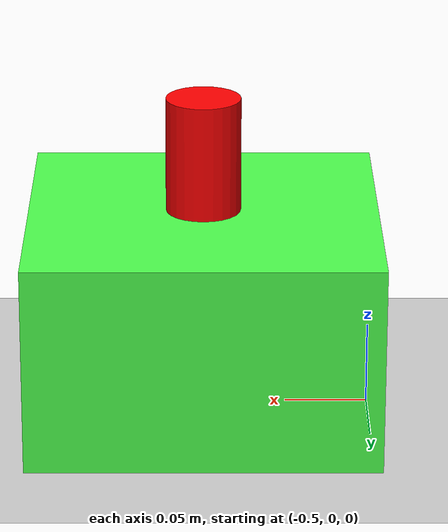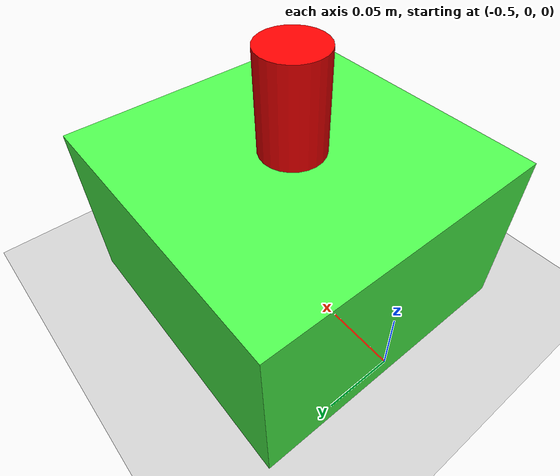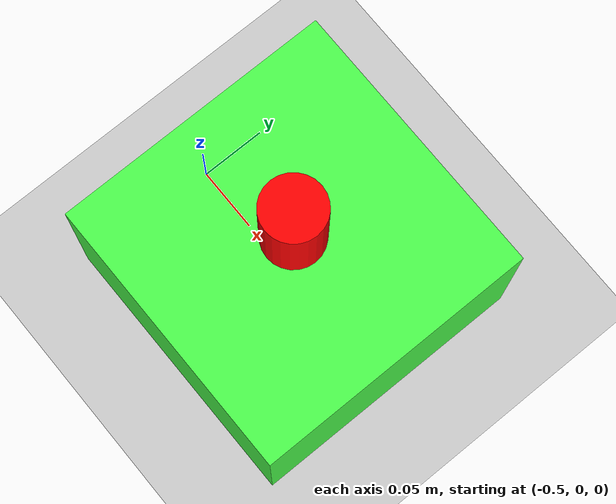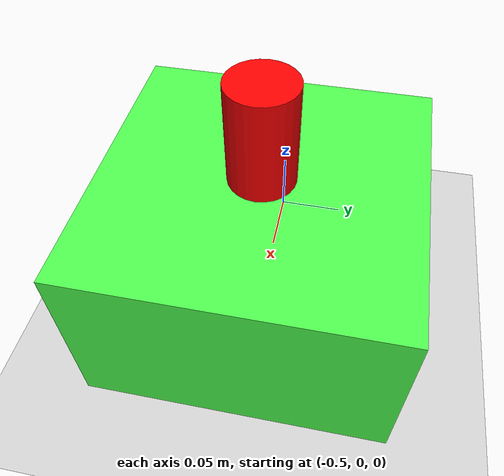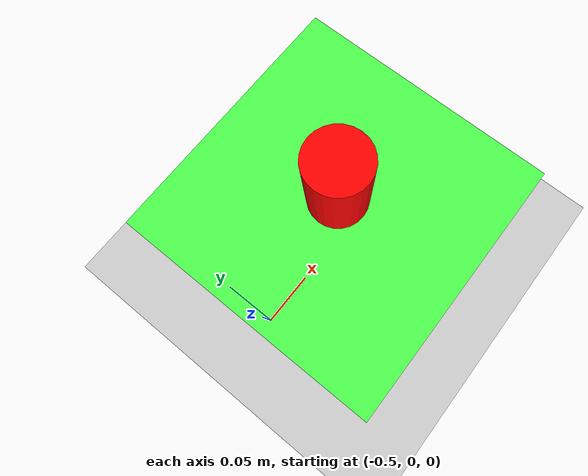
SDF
<sdf version="1.7">
 <world name="default">
  <light name="sun" type="directional">
   <pose>0 0 10 0 -0 0</pose>
   <diffuse>0.8 0.8 0.8 1</diffuse>
   <specular>0.2 0.2 0.2 1</specular>
   <attenuation>
    <range>1000</range>
    <constant>0.9</constant>
    <linear>0.01</linear>
    <quadratic>0.001</quadratic>
   </attenuation>
   <direction>-0.5 0.1 -0.9</direction>
   <spot><inner_angle>0</inner_angle><outer_angle>0</outer_angle><falloff>0</falloff></spot>
  </light>
  <model name="ground_plane">
   <static>1</static>
   <link name="link">
    <collision name="collision">
     <geometry><plane><normal>0 0 1</normal><size>100 100</size></plane></geometry>
     <surface>
      <contact><collide_bitmask>65535</collide_bitmask></contact>
      <friction><ode><mu>100</mu><mu2>50</mu2></ode></friction>
     </surface>
    </collision>
    <visual name="visual">
     <cast_shadows>0</cast_shadows>
     <geometry><plane><normal>0 0 1</normal><size>100 100</size></plane></geometry>
     <material>
      <script><uri>file://media/materials/scripts/gazebo.material</uri><name>Gazebo/Grey</name></script>
     </material>
    </visual>
   </link>
  </model>
  <gravity>0 0 -9.8</gravity>
  <magnetic_field>6e-06 2.3e-05 -4.2e-05</magnetic_field>
  <atmosphere type="adiabatic"/>
  <physics type="ode">
   <max_step_size>0.001</max_step_size>
   <real_time_factor>1</real_time_factor>
   <real_time_update_rate>1000</real_time_update_rate>
  </physics>
  <scene><ambient>0.4 0.4 0.4 1</ambient><background>0.7 0.7 0.7 1</background><shadows>1</shadows></scene>
  <spherical_coordinates>
   <surface_model>EARTH_WGS84</surface_model>
   <latitude_deg>0</latitude_deg>
   <longitude_deg>0</longitude_deg>
   <elevation>0</elevation>
   <heading_deg>0</heading_deg>
  </spherical_coordinates>
  <model name="platform">
   <link name="link">
    <inertial>
     <mass>2</mass>
     <inertia>
      <ixx>0.333333</ixx>
      <ixy>0</ixy>
      <ixz>0</ixz>
      <iyy>0.333333</iyy>
      <iyz>0</iyz>
      <izz>0.333333</izz>
     </inertia>
    </inertial>
    <pose>-0.4 0 0.0625 0 -0 0</pose>
    <visual name="visual">
     <geometry><box><size>0.21 0.21 0.13</size></box></geometry>
     <material>
      <script><name>Gazebo/Grey</name><uri>file://media/materials/scripts/gazebo.material</uri></script>
      <shader type="pixel"><normal_map>__default__</normal_map></shader>
      <ambient>0.3 1 0.3 1</ambient>
      <diffuse>0.7 0.7 0.7 1</diffuse>
      <specular>0.01 0.01 0.01 1</specular>
      <emissive>0 0 0 1</emissive>
     </material>
    </visual>
    <collision name="collision">
     <geometry><box><size>0.21 0.21 0.13</size></box></geometry>
     <surface>
      <friction>
       <ode><mu>1</mu><mu2>1</mu2><fdir1>0 0 0</fdir1><slip1>0</slip1><slip2>0</slip2></ode>
       <torsional>
        <coefficient>1</coefficient>
        <patch_radius>0</patch_radius>
        <surface_radius>0</surface_radius>
        <use_patch_radius>1</use_patch_radius>
        <ode><slip>0</slip></ode>
       </torsional>
      </friction>
      <bounce><restitution_coefficient>0</restitution_coefficient><threshold>1e+06</threshold></bounce>
      <contact>
       <collide_without_contact>0</collide_without_contact>
       <collide_without_contact_bitmask>1</collide_without_contact_bitmask>
       <collide_bitmask>1</collide_bitmask>
       <ode>
        <soft_cfm>0</soft_cfm>
        <soft_erp>0.2</soft_erp>
        <kp>1e+13</kp>
        <kd>1</kd>
        <max_vel>0.01</max_vel>
        <min_depth>0</min_depth>
       </ode>
       <bullet>
        <split_impulse>1</split_impulse>
        <split_impulse_penetration_threshold>-0.01</split_impulse_penetration_threshold>
        <soft_cfm>0</soft_cfm>
        <soft_erp>0.2</soft_erp>
        <kp>1e+13</kp>
        <kd>1</kd>
       </bullet>
      </contact>
     </surface>
    </collision>
   </link>
   <static>0</static>
   <pose>0 -0 -0.002412 3e-06 4e-06 -1e-06</pose>
  </model>
  <model name="vitamins">
   <link name="link">
    <inertial>
     <mass>1e-06</mass>
     <inertia><ixx>7e-08</ixx><ixy>0</ixy><ixz>0</ixz><iyy>7e-08</iyy><iyz>0</iyz><izz>1e-08</izz></inertia>
    </inertial>
    <pose>-0.4 -0 0.13 0 -0 0</pose>
    <visual name="visual">
     <geometry><cylinder><radius>0.0225</radius><length>0.07</length></cylinder></geometry>
     <material>
      <script><name>Gazebo/Grey</name><uri>file://media/materials/scripts/gazebo.material</uri></script>
      <shader type="pixel"><normal_map>__default__</normal_map></shader>
      <ambient>1 0 0 0</ambient>
      <diffuse>0.7 0.7 0.7 1</diffuse>
      <specular>0.01 0.01 0.01 1</specular>
      <emissive>0 0 0 1</emissive>
     </material>
    </visual>
    <collision name="collision">
     <geometry><cylinder><radius>0.0225</radius><length>0.07</length></cylinder></geometry>
     <surface>
      <friction>
       <ode><mu>1</mu><mu2>1</mu2><fdir1>0 0 0</fdir1><slip1>0</slip1><slip2>0</slip2></ode>
       <torsional>
        <coefficient>1</coefficient>
        <patch_radius>0</patch_radius>
        <surface_radius>0</surface_radius>
        <use_patch_radius>1</use_patch_radius>
        <ode><slip>0</slip></ode>
       </torsional>
      </friction>
      <bounce><restitution_coefficient>0</restitution_coefficient><threshold>1e+06</threshold></bounce>
      <contact>
       <collide_without_contact>0</collide_without_contact>
       <collide_without_contact_bitmask>1</collide_without_contact_bitmask>
       <collide_bitmask>1</collide_bitmask>
       <ode>
        <soft_cfm>0</soft_cfm>
        <soft_erp>0.2</soft_erp>
        <kp>1e+13</kp>
        <kd>1</kd>
        <max_vel>0.01</max_vel>
        <min_depth>0</min_depth>
       </ode>
       <bullet>
        <split_impulse>1</split_impulse>
        <split_impulse_penetration_threshold>-0.01</split_impulse_penetration_threshold>
        <soft_cfm>0</soft_cfm>
        <soft_erp>0.2</soft_erp>
        <kp>1e+13</kp>
        <kd>1</kd>
       </bullet>
      </contact>
     </surface>
    </collision>
   </link>
   <static>0</static>
   <pose>-1.7e-05 0.000778 0.030008 -0.000249 0.000198 0.002009</pose>
  </model>
 </world>
</sdf>
